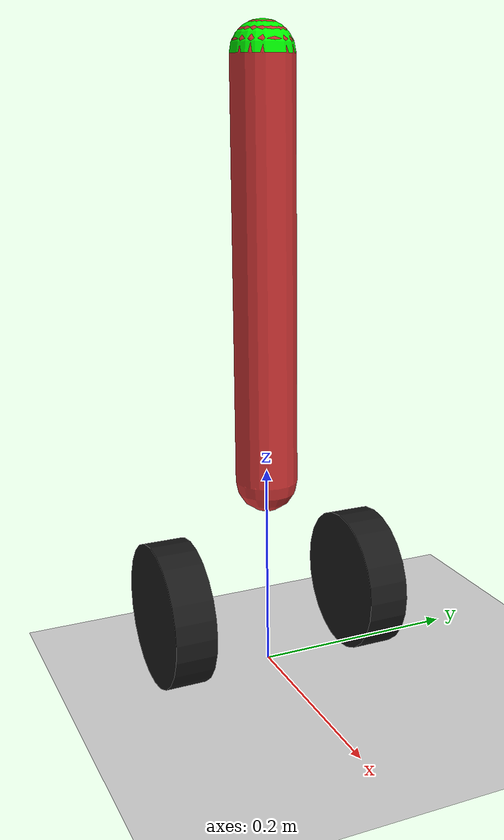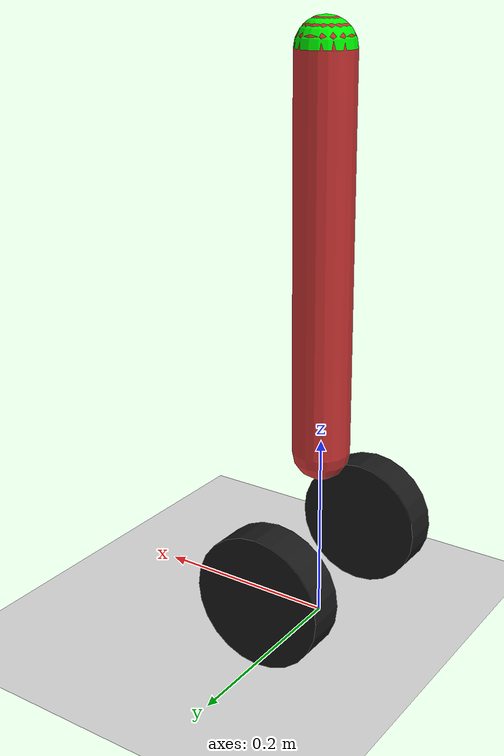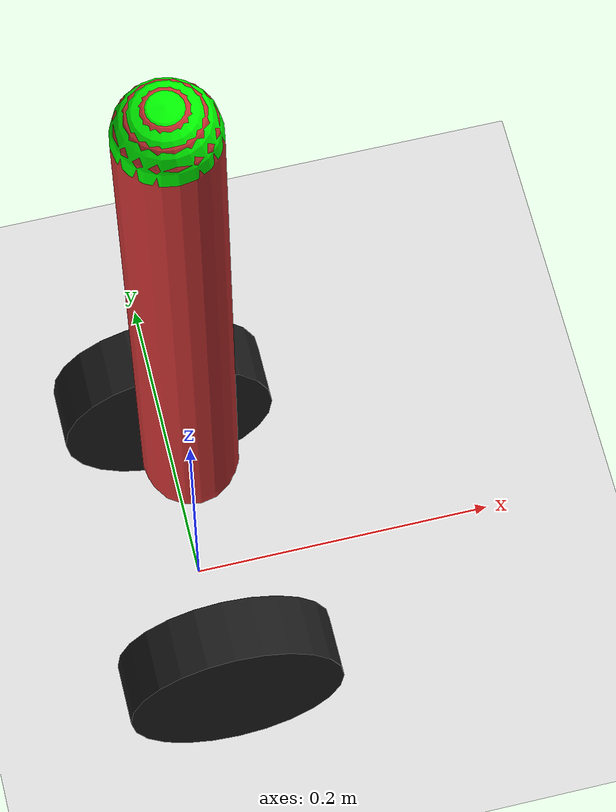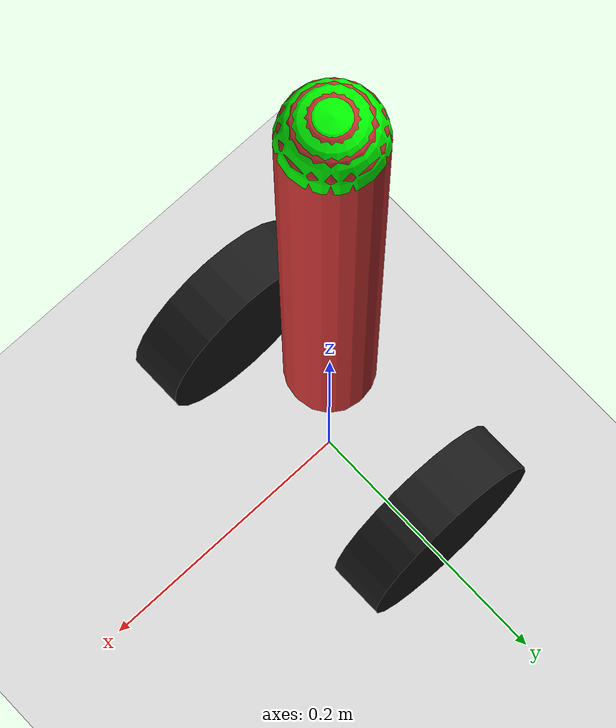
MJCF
<mujoco model="segway">
  <option gravity="0 0 -9.81" timestep="0.001"/>

  <asset>
    <!-- Lighter skybox and ground textures for clarity -->
    <texture type="skybox" builtin="gradient" rgb1="0.9 0.9 0.9" rgb2="0.8 0.8 0.8" width="512" height="512"/>
    <texture name="checker" type="2d" builtin="checker" rgb1="0.8 0.8 0.8" rgb2="0.95 0.95 0.95" width="512" height="512"/>
    <material name="matplane" reflectance="0.3" texture="checker" texrepeat="1 1" texuniform="true"/>
  </asset>

  <worldbody>
    <!-- Ground -->
    <geom name="ground" type="plane" pos="0 0 0" size="10 10 0.1" material="matplane"/>

    <!-- Base representing the robot's body -->
    <!-- Base is positioned at z=0.14 for proper dynamics -->
    <body name="base" pos="0 0 0.14">
      <!-- Slider joint for horizontal translation (x-axis) -->
      <joint name="slide" type="slide" axis="1 0 0" pos="0 0 0" limited="true" range="-5 5"/>

      <!-- Two wheels with reduced lateral separation -->
      <!-- Left wheel: positioned at y = 0.1 relative to base -->
      <geom name="wheel_left" type="cylinder" pos="0 0.1 -0.07" size="0.07 0.02" euler="90 0 0" rgba="0.1 0.1 0.1 1"/>
      <!-- Right wheel: positioned at y = -0.1 relative to base -->
      <geom name="wheel_right" type="cylinder" pos="0 -0.1 -0.07" size="0.07 0.02" euler="90 0 0" rgba="0.1 0.1 0.1 1"/>

      <!-- Inverted pendulum attached to the base -->
      <!-- Positioned on top of the base so that it looks grounded -->
      <body name="pendulum" pos="0 0 0.05">
        <!-- Hinge joint for pendulum tilt (rotates about y-axis) -->
        <joint name="pend_hinge" type="hinge" axis="0 1 0" pos="0 0 0" damping="0.1"/>
        <!-- Pendulum geometry: a capsule representing the rod (extending upward) -->
        <geom name="pendulum_geom" type="capsule" fromto="0 0 0 0 0 0.4" size="0.03" rgba="0.8 0.2 0.2 1"/>
        <site name="pend_tip" pos="0 0 0.4" size="0.03" rgba="0 1 0 1"/>
      </body>
    </body>
  </worldbody>

  <actuator>
    <!-- Actuator applies force to the slider joint -->
    <general name="drive" joint="slide" gear="1" ctrllimited="true" ctrlrange="-50 50"/>
  </actuator>

  <sensor>
    <jointpos name="slide_pos" joint="slide"/>
    <jointvel name="slide_vel" joint="slide"/>
    <jointpos name="pend_angle" joint="pend_hinge"/>
    <jointvel name="pend_vel" joint="pend_hinge"/>
  </sensor>
</mujoco>
